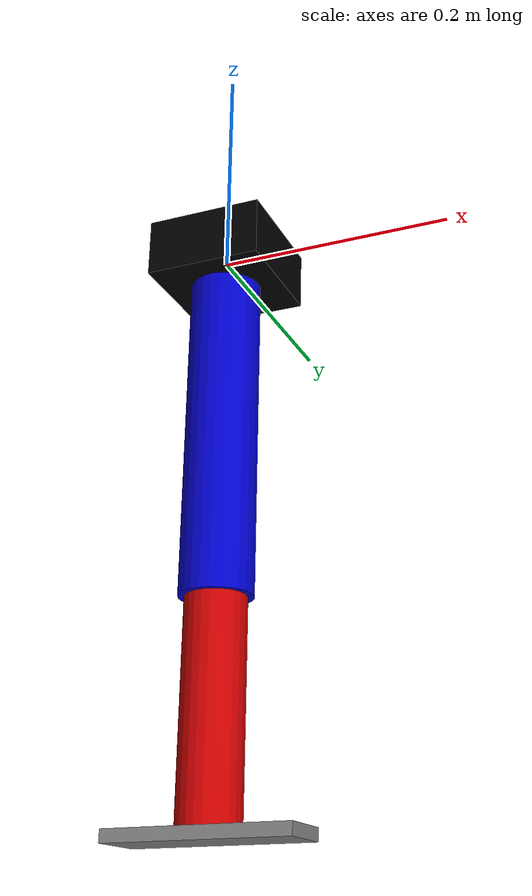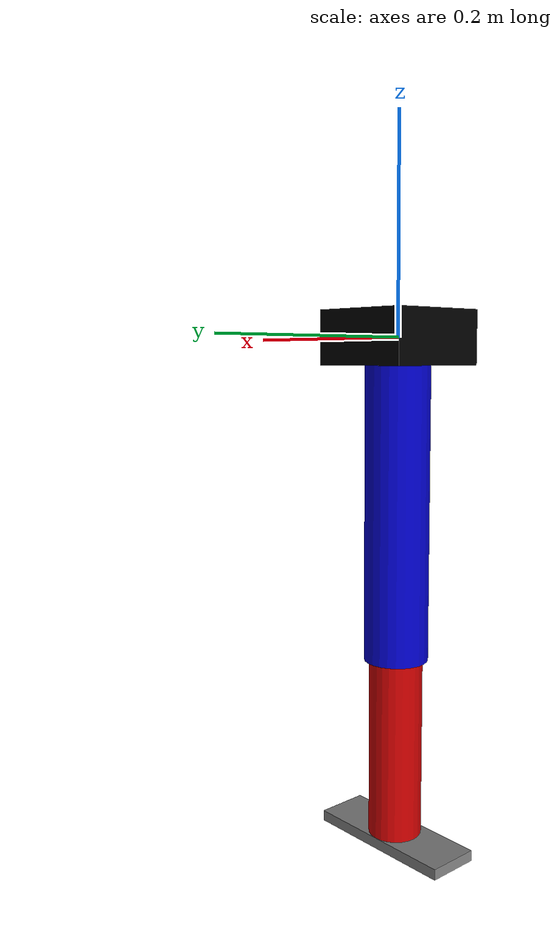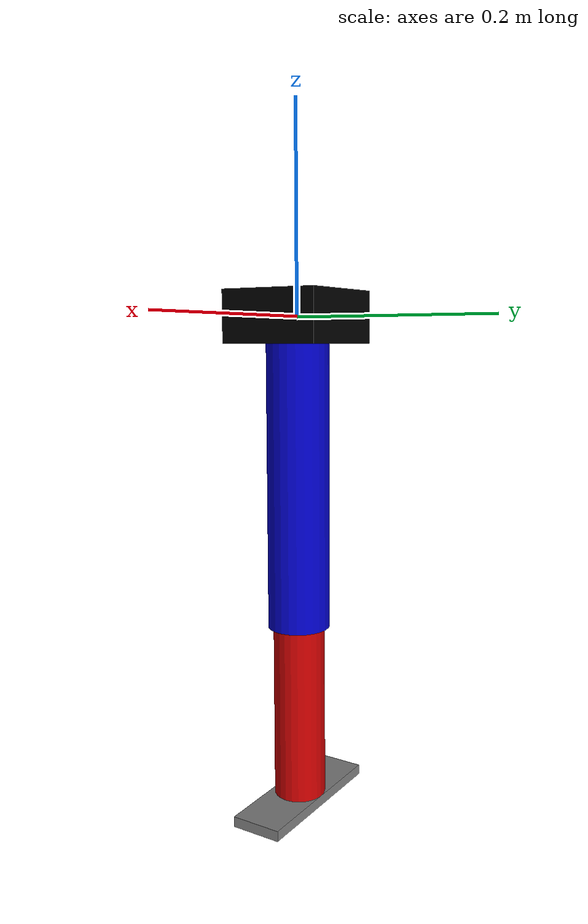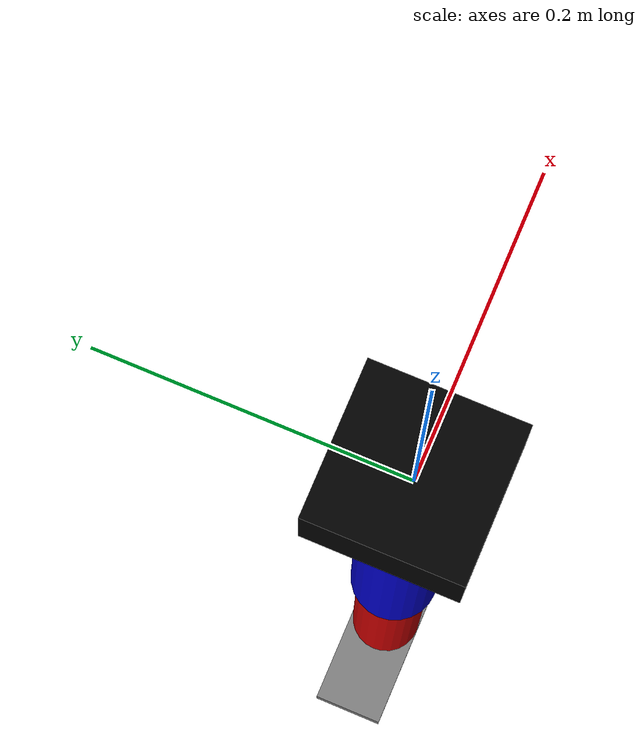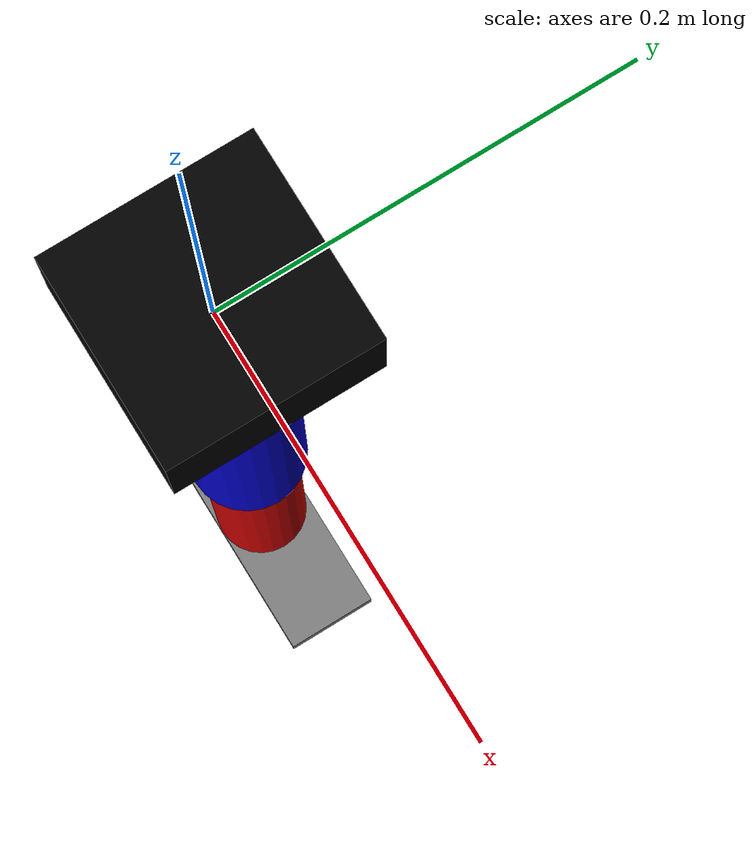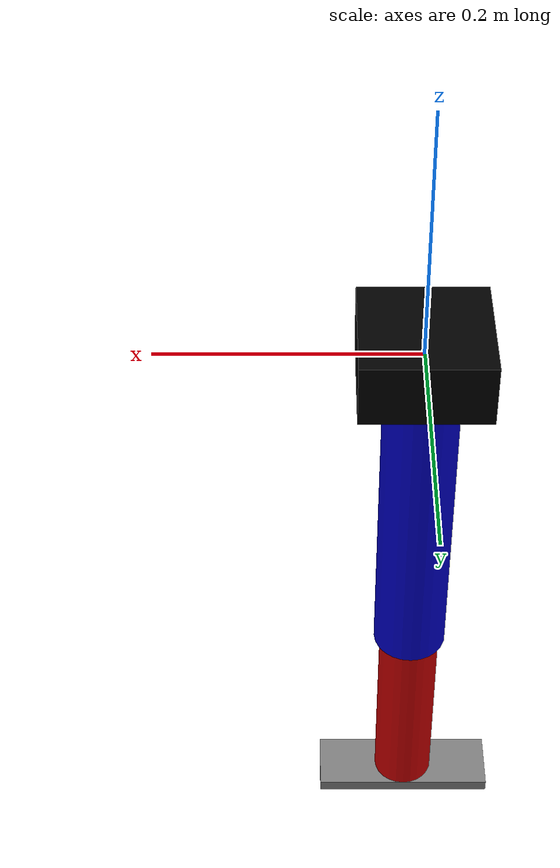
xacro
<?xml version="1.0"?>
<robot name="exoskeleton_leg" xmlns:xacro="http://www.ros.org/wiki/xacro">

<!-- Base Link -->
<link name="base_link">
  <inertial>
    <mass value="1.0"/>
    <inertia ixx="0.01" ixy="0" ixz="0" iyy="0.01" iyz="0" izz="0.01"/>
  </inertial>
  <visual>
    <geometry><box size="0.1 0.1 0.05"/></geometry>
    <material name="black"><color rgba="0 0 0 1"/></material>
  </visual>
  <collision><geometry><box size="0.1 0.1 0.05"/></geometry></collision>
</link>

<!-- Hip Joint -->
<joint name="hip_joint" type="revolute">
  <parent link="base_link"/>
  <child link="thigh_link"/>
  <!-- Position hip joint at the bottom of base_link (assuming base_link height is negligible) -->
  <origin xyz="0 0 -.15" rpy="0 0 0"/>
  <axis xyz="0 0 1"/>
  <limit effort="100" velocity="2.0" lower="-1.0" upper="1.0"/>
  <dynamics damping="0.1" friction="0.01"/>
</joint>

<!-- Thigh Link -->
<link name="thigh_link">
  <visual>
    <geometry><cylinder length="0.3" radius="0.03"/></geometry>
    <material name="blue"><color rgba="0 0 0.8 1"/></material>
  </visual>
  <collision><geometry><cylinder length="0.3" radius="0.03"/></geometry></collision>
  <inertial>
    <mass value="0.5"/>
    <inertia ixx="0.005" ixy="0" ixz="0" iyy="0.005" iyz="0" izz="0.005"/>
  </inertial>
</link>

<!-- Knee Joint -->
<joint name="knee_joint" type="revolute">
  <parent link="thigh_link"/>
  <child link="shank_link"/>
  <!-- Position knee joint at the end of thigh_link -->
  <origin xyz="0 0 -0.15" rpy="0 0 0"/> <!-- Negative Z to move down from thigh_link -->
  <axis xyz="0 0 1"/>
  <limit effort="50" velocity="1.5" lower="0" upper="2.0"/>
  <dynamics damping="0.05" friction="0.005"/>
</joint>

<!-- Shank Link -->
<link name="shank_link">
  <visual>
    <geometry><cylinder length="0.35" radius="0.025"/></geometry>
    <material name="red"><color rgba="0.8 0 0 1"/></material>
  </visual>
  <collision><geometry><cylinder length="0.35" radius="0.025"/></geometry></collision>
  <inertial>
    <mass value="0.3"/>
    <inertia ixx="0.003" ixy="0" ixz="0" iyy="0.003" iyz="0" izz="0.003"/>
  </inertial>
</link>

<!-- Ankle Joint -->
<joint name="ankle_joint" type="revolute">
  <parent link="shank_link"/>
  <child link="foot_link"/>
  <!-- Position ankle joint at the end of shank_link -->
  <origin xyz="0 0 -0.175" rpy="0 0 0"/> <!-- Negative Z to move down from shank_link -->
  <axis xyz="0 1 0"/>
  <limit effort="30" velocity="1.0" lower="-0.5" upper="0.5"/>
  <dynamics damping="0.03" friction="0.005"/>
</joint>

<!-- Foot Link -->
<link name="foot_link">
  <visual>
    <geometry><box size="0.15 0.05 0.01"/></geometry>
    <material name="gray"><color rgba="0.5 0.5 0.5 1"/></material>
  </visual>
  <collision><geometry><box size="0.15 0.05 0.01"/></geometry></collision>
  <inertial>
    <mass value="0.1"/>
    <inertia ixx="0.0001" ixy="0" ixz="0" iyy="0.0001" iyz="0" izz="0.0001"/>
  </inertial>
</link>

<!-- Transmissions (unchanged) -->
<transmission name="hip_transmission">
  <type>transmission_interface/SimpleTransmission</type>
  <actuator name="hip_motor">
    <hardwareInterface>Effort</hardwareInterface>
  </actuator>
  <joint name="hip_joint"/>
</transmission>

<transmission name="knee_transmission">
  <type>transmission_interface/SimpleTransmission</type>
  <actuator name="knee_motor">
    <hardwareInterface>Effort</hardwareInterface>
  </actuator>
  <joint name="knee_joint"/>
</transmission>

<transmission name="ankle_transmission">
  <type>transmission_interface/SimpleTransmission</type>
  <actuator name="ankle_motor">
    <hardwareInterface>Effort</hardwareInterface>
  </actuator>
  <joint name="ankle_joint"/>
</transmission>

<!-- Gazebo plugins (unchanged) -->
<gazebo reference="thigh_link">
  <sensor type="imu" name="thigh_imu">
    <always_on>true</always_on>
    <update_rate>100</update_rate>
  </sensor>
</gazebo>

<gazebo reference="foot_link">
  <sensor type="contact" name="foot_contact">
    <always_on>true</always_on>
    <update_rate>50</update_rate>
  </sensor>
</gazebo>

<gazebo>
  <plugin name="gazebo_ros_control" filename="libgazebo_ros_control.so">
    <robotNamespace>/exoskeleton</robotNamespace>
  </plugin>
</gazebo>
</robot>
